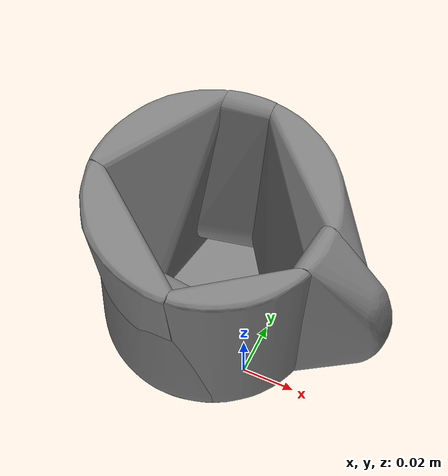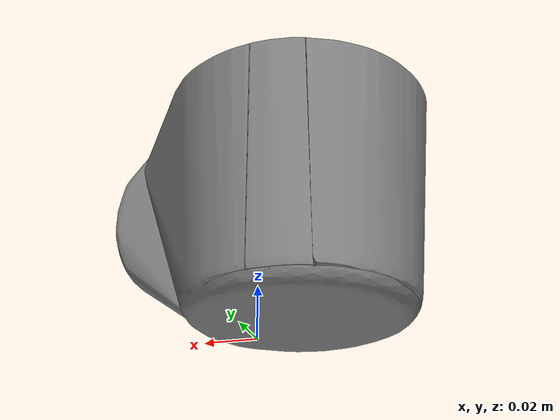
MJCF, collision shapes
<mujoco model="ycb_025_mug">
  <compiler meshdir="meshes" texturedir="meshes" angle="radian"/>
  <default>
    <default class="visual"><geom contype="0" conaffinity="0" group="2" density="0"/></default>
    <default class="collision"><geom group="3"/></default>
  </default>
  <asset>
    <texture name="ycb_025_mug_tex" type="2d" file="ycb_025_mug_texture.png"/>
    <material name="ycb_025_mug_mat" texture="ycb_025_mug_tex" specular="0.2" shininess="0.3"/>
    <mesh name="ycb_025_mug_visual" file="ycb_025_mug_visual.obj"/>
    <mesh name="ycb_025_mug_hull0" file="ycb_025_mug_hull0.obj"/>
    <mesh name="ycb_025_mug_hull1" file="ycb_025_mug_hull1.obj"/>
    <mesh name="ycb_025_mug_hull2" file="ycb_025_mug_hull2.obj"/>
    <mesh name="ycb_025_mug_hull3" file="ycb_025_mug_hull3.obj"/>
    <mesh name="ycb_025_mug_hull4" file="ycb_025_mug_hull4.obj"/>
    <mesh name="ycb_025_mug_hull5" file="ycb_025_mug_hull5.obj"/>
    <mesh name="ycb_025_mug_hull6" file="ycb_025_mug_hull6.obj"/>
    <mesh name="ycb_025_mug_hull7" file="ycb_025_mug_hull7.obj"/>
  </asset>
  <worldbody>
    <body name="object" pos="0 0 0">
      <freejoint name="object_free"/>
      <geom type="mesh" mesh="ycb_025_mug_visual" material="ycb_025_mug_mat" class="visual"/>
      <geom type="mesh" mesh="ycb_025_mug_hull0" class="collision"/>
      <geom type="mesh" mesh="ycb_025_mug_hull1" class="collision"/>
      <geom type="mesh" mesh="ycb_025_mug_hull2" class="collision"/>
      <geom type="mesh" mesh="ycb_025_mug_hull3" class="collision"/>
      <geom type="mesh" mesh="ycb_025_mug_hull4" class="collision"/>
      <geom type="mesh" mesh="ycb_025_mug_hull5" class="collision"/>
      <geom type="mesh" mesh="ycb_025_mug_hull6" class="collision"/>
      <geom type="mesh" mesh="ycb_025_mug_hull7" class="collision"/>
    </body>
  </worldbody>
</mujoco>
